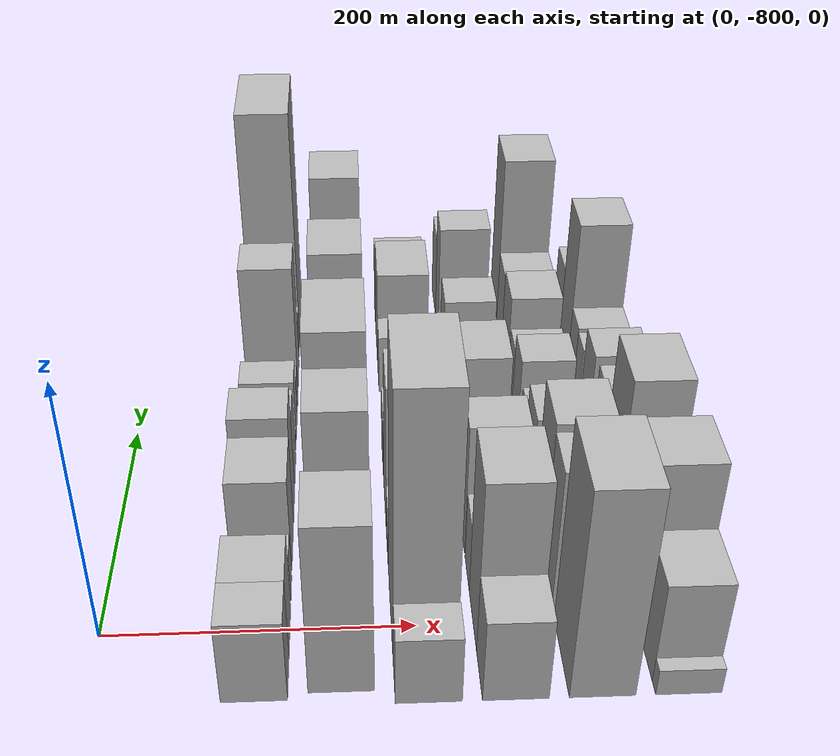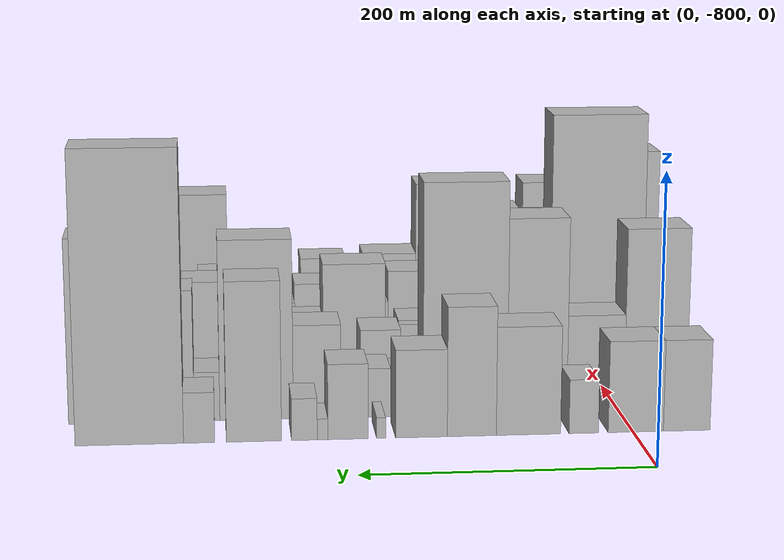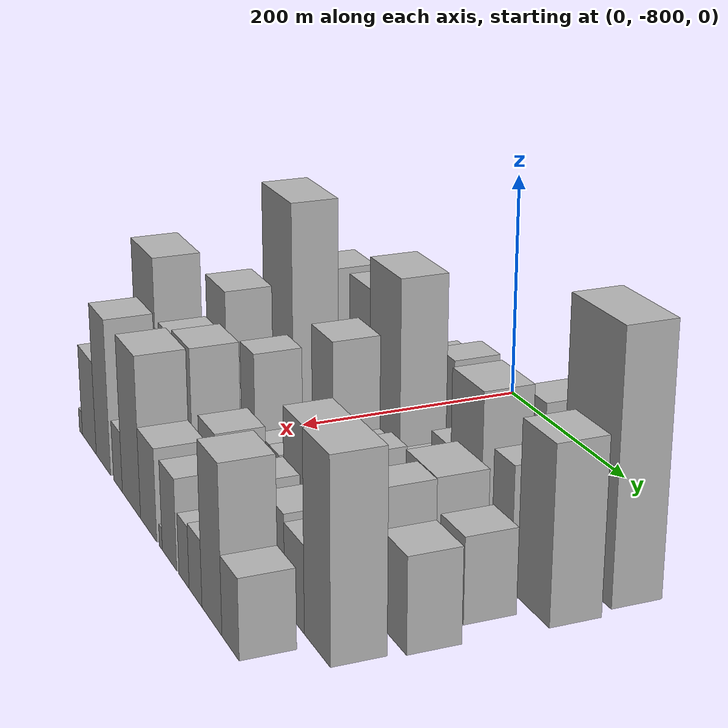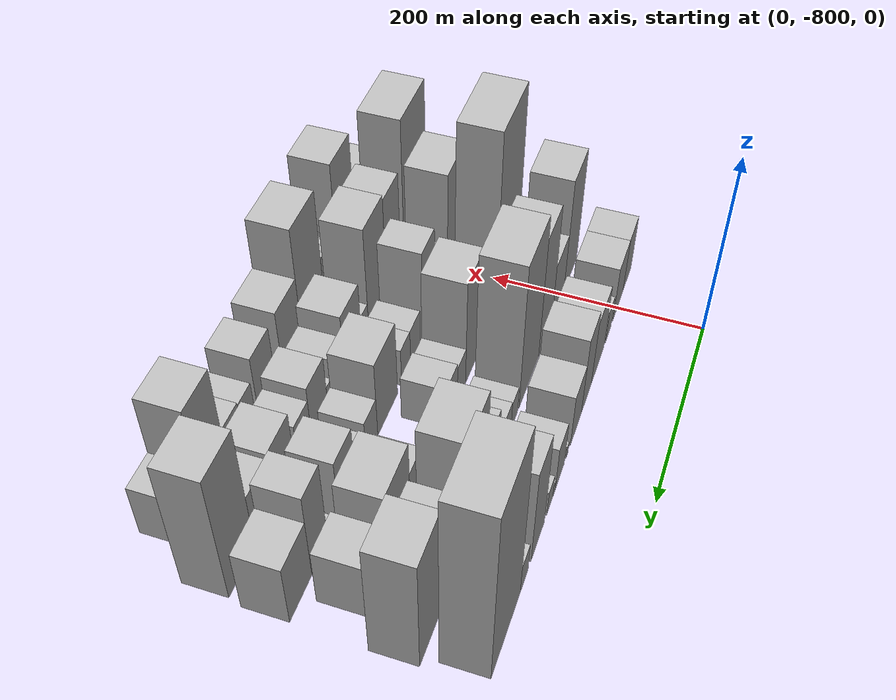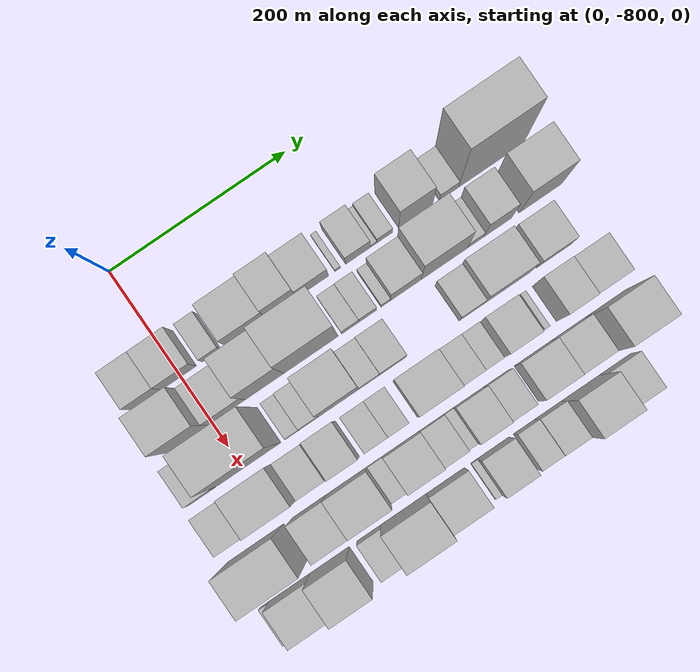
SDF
<sdf version="1.6">
 <world name="default">
  <model name="building_1">
   <static>1</static>
   <pose>100.0000 -838.2706 0 0.000000 0.000000 0.000000</pose>
   <link name="link">
    <pose>0 0 33.00 0 0 0</pose>
    <collision name="collision"><geometry><box><size>40.0000 33.4589 66.0000</size></box></geometry></collision>
    <visual name="visual">
     <cast_shadows>0</cast_shadows>
     <geometry><box><size>40.0000 33.4589 66.0000</size></box></geometry>
     <material>
      <script>
       <uri>model://HANNAS_wall/materials/scripts</uri>
       <uri>model://HANNAS_wall/materials/textures</uri>
       <name>vrc/HANNAS_wall</name>
      </script>
     </material>
    </visual>
   </link>
  </model>
  <model name="building_2">
   <static>1</static>
   <pose>100.0000 -801.8729 0 0.000000 0.000000 0.000000</pose>
   <link name="link">
    <pose>0 0 33.00 0 0 0</pose>
    <collision name="collision"><geometry><box><size>40.0000 39.3364 66.0000</size></box></geometry></collision>
    <visual name="visual">
     <cast_shadows>0</cast_shadows>
     <geometry><box><size>40.0000 39.3364 66.0000</size></box></geometry>
     <material>
      <script>
       <uri>model://HANNAS_wall/materials/scripts</uri>
       <uri>model://HANNAS_wall/materials/textures</uri>
       <name>vrc/HANNAS_wall</name>
      </script>
     </material>
    </visual>
   </link>
  </model>
  <model name="building_3">
   <static>1</static>
   <pose>100.0000 -764.7905 0 0.000000 0.000000 0.000000</pose>
   <link name="link">
    <pose>0 0 19.50 0 0 0</pose>
    <collision name="collision"><geometry><box><size>40.0000 20.8283 39.0000</size></box></geometry></collision>
    <visual name="visual">
     <cast_shadows>0</cast_shadows>
     <geometry><box><size>40.0000 20.8283 39.0000</size></box></geometry>
     <material>
      <script>
       <uri>model://HANNAS_wall/materials/scripts</uri>
       <uri>model://HANNAS_wall/materials/textures</uri>
       <name>vrc/HANNAS_wall</name>
      </script>
     </material>
    </visual>
   </link>
  </model>
  <model name="building_4">
   <static>1</static>
   <pose>100.0000 -725.6079 0 0.000000 0.000000 0.000000</pose>
   <link name="link">
    <pose>0 0 39.00 0 0 0</pose>
    <collision name="collision"><geometry><box><size>40.0000 45.5370 78.0000</size></box></geometry></collision>
    <visual name="visual">
     <cast_shadows>0</cast_shadows>
     <geometry><box><size>40.0000 45.5370 78.0000</size></box></geometry>
     <material>
      <script>
       <uri>model://HANNAS_wall/materials/scripts</uri>
       <uri>model://HANNAS_wall/materials/textures</uri>
       <name>vrc/HANNAS_wall</name>
      </script>
     </material>
    </visual>
   </link>
  </model>
  <model name="building_5">
   <static>1</static>
   <pose>100.0000 -685.6051 0 0.000000 0.000000 0.000000</pose>
   <link name="link">
    <pose>0 0 46.50 0 0 0</pose>
    <collision name="collision"><geometry><box><size>40.0000 34.4686 93.0000</size></box></geometry></collision>
    <visual name="visual">
     <cast_shadows>0</cast_shadows>
     <geometry><box><size>40.0000 34.4686 93.0000</size></box></geometry>
     <material>
      <script>
       <uri>model://HANNAS_wall/materials/scripts</uri>
       <uri>model://HANNAS_wall/materials/textures</uri>
       <name>vrc/HANNAS_wall</name>
      </script>
     </material>
    </visual>
   </link>
  </model>
  <model name="building_6">
   <static>1</static>
   <pose>100.0000 -650.2507 0 0.000000 0.000000 0.000000</pose>
   <link name="link">
    <pose>0 0 31.50 0 0 0</pose>
    <collision name="collision"><geometry><box><size>40.0000 36.2403 63.0000</size></box></geometry></collision>
    <visual name="visual">
     <cast_shadows>0</cast_shadows>
     <geometry><box><size>40.0000 36.2403 63.0000</size></box></geometry>
     <material>
      <script>
       <uri>model://HANNAS_wall/materials/scripts</uri>
       <uri>model://HANNAS_wall/materials/textures</uri>
       <name>vrc/HANNAS_wall</name>
      </script>
     </material>
    </visual>
   </link>
  </model>
  <model name="building_7">
   <static>1</static>
   <pose>100.0000 -621.9968 0 0.000000 0.000000 0.000000</pose>
   <link name="link">
    <pose>0 0 7.50 0 0 0</pose>
    <collision name="collision"><geometry><box><size>40.0000 6.2674 15.0000</size></box></geometry></collision>
    <visual name="visual">
     <cast_shadows>0</cast_shadows>
     <geometry><box><size>40.0000 6.2674 15.0000</size></box></geometry>
     <material>
      <script>
       <uri>model://HANNAS_wall/materials/scripts</uri>
       <uri>model://HANNAS_wall/materials/textures</uri>
       <name>vrc/HANNAS_wall</name>
      </script>
     </material>
    </visual>
   </link>
  </model>
  <model name="building_8">
   <static>1</static>
   <pose>100.0000 -598.8530 0 0.000000 0.000000 0.000000</pose>
   <link name="link">
    <pose>0 0 27.00 0 0 0</pose>
    <collision name="collision"><geometry><box><size>40.0000 28.0203 54.0000</size></box></geometry></collision>
    <visual name="visual">
     <cast_shadows>0</cast_shadows>
     <geometry><box><size>40.0000 28.0203 54.0000</size></box></geometry>
     <material>
      <script>
       <uri>model://HANNAS_wall/materials/scripts</uri>
       <uri>model://HANNAS_wall/materials/textures</uri>
       <name>vrc/HANNAS_wall</name>
      </script>
     </material>
    </visual>
   </link>
  </model>
  <model name="building_9">
   <static>1</static>
   <pose>100.0000 -581.1232 0 0.000000 0.000000 0.000000</pose>
   <link name="link">
    <pose>0 0 7.50 0 0 0</pose>
    <collision name="collision"><geometry><box><size>40.0000 7.4392 15.0000</size></box></geometry></collision>
    <visual name="visual">
     <cast_shadows>0</cast_shadows>
     <geometry><box><size>40.0000 7.4392 15.0000</size></box></geometry>
     <material>
      <script>
       <uri>model://HANNAS_wall/materials/scripts</uri>
       <uri>model://HANNAS_wall/materials/textures</uri>
       <name>vrc/HANNAS_wall</name>
      </script>
     </material>
    </visual>
   </link>
  </model>
  <model name="building_10">
   <static>1</static>
   <pose>100.0000 -568.5045 0 0.000000 0.000000 0.000000</pose>
   <link name="link">
    <pose>0 0 15.00 0 0 0</pose>
    <collision name="collision"><geometry><box><size>40.0000 17.7981 30.0000</size></box></geometry></collision>
    <visual name="visual">
     <cast_shadows>0</cast_shadows>
     <geometry><box><size>40.0000 17.7981 30.0000</size></box></geometry>
     <material>
      <script>
       <uri>model://HANNAS_wall/materials/scripts</uri>
       <uri>model://HANNAS_wall/materials/textures</uri>
       <name>vrc/HANNAS_wall</name>
      </script>
     </material>
    </visual>
   </link>
  </model>
  <model name="building_11">
   <static>1</static>
   <pose>100.0000 -533.4945 0 0.000000 0.000000 0.000000</pose>
   <link name="link">
    <pose>0 0 57.00 0 0 0</pose>
    <collision name="collision"><geometry><box><size>40.0000 38.2220 114.0000</size></box></geometry></collision>
    <visual name="visual">
     <cast_shadows>0</cast_shadows>
     <geometry><box><size>40.0000 38.2220 114.0000</size></box></geometry>
     <material>
      <script>
       <uri>model://HANNAS_wall/materials/scripts</uri>
       <uri>model://HANNAS_wall/materials/textures</uri>
       <name>vrc/HANNAS_wall</name>
      </script>
     </material>
    </visual>
   </link>
  </model>
  <model name="building_12">
   <static>1</static>
   <pose>100.0000 -495.6311 0 0.000000 0.000000 0.000000</pose>
   <link name="link">
    <pose>0 0 18.00 0 0 0</pose>
    <collision name="collision"><geometry><box><size>40.0000 21.5048 36.0000</size></box></geometry></collision>
    <visual name="visual">
     <cast_shadows>0</cast_shadows>
     <geometry><box><size>40.0000 21.5048 36.0000</size></box></geometry>
     <material>
      <script>
       <uri>model://HANNAS_wall/materials/scripts</uri>
       <uri>model://HANNAS_wall/materials/textures</uri>
       <name>vrc/HANNAS_wall</name>
      </script>
     </material>
    </visual>
   </link>
  </model>
  <model name="building_13">
   <static>1</static>
   <pose>100.0000 -447.6939 0 0.000000 0.000000 0.000000</pose>
   <link name="link">
    <pose>0 0 103.50 0 0 0</pose>
    <collision name="collision"><geometry><box><size>40.0000 74.3696 207.0000</size></box></geometry></collision>
    <visual name="visual">
     <cast_shadows>0</cast_shadows>
     <geometry><box><size>40.0000 74.3696 207.0000</size></box></geometry>
     <material>
      <script>
       <uri>model://HANNAS_wall/materials/scripts</uri>
       <uri>model://HANNAS_wall/materials/textures</uri>
       <name>vrc/HANNAS_wall</name>
      </script>
     </material>
    </visual>
   </link>
  </model>
  <model name="building_51">
   <static>1</static>
   <pose>152.0000 -826.8438 0 0.000000 0.000000 0.000000</pose>
   <link name="link">
    <pose>0 0 67.50 0 0 0</pose>
    <collision name="collision"><geometry><box><size>40.0000 46.3125 135.0000</size></box></geometry></collision>
    <visual name="visual">
     <cast_shadows>0</cast_shadows>
     <geometry><box><size>40.0000 46.3125 135.0000</size></box></geometry>
     <material>
      <script>
       <uri>model://HANNAS_wall/materials/scripts</uri>
       <uri>model://HANNAS_wall/materials/textures</uri>
       <name>vrc/HANNAS_wall</name>
      </script>
     </material>
    </visual>
   </link>
  </model>
  <model name="building_52">
   <static>1</static>
   <pose>152.0000 -782.7154 0 0.000000 0.000000 0.000000</pose>
   <link name="link">
    <pose>0 0 36.00 0 0 0</pose>
    <collision name="collision"><geometry><box><size>40.0000 41.9442 72.0000</size></box></geometry></collision>
    <visual name="visual">
     <cast_shadows>0</cast_shadows>
     <geometry><box><size>40.0000 41.9442 72.0000</size></box></geometry>
     <material>
      <script>
       <uri>model://HANNAS_wall/materials/scripts</uri>
       <uri>model://HANNAS_wall/materials/textures</uri>
       <name>vrc/HANNAS_wall</name>
      </script>
     </material>
    </visual>
   </link>
  </model>
  <model name="building_53">
   <static>1</static>
   <pose>152.0000 -739.8804 0 0.000000 0.000000 0.000000</pose>
   <link name="link">
    <pose>0 0 72.00 0 0 0</pose>
    <collision name="collision"><geometry><box><size>40.0000 43.7260 144.0000</size></box></geometry></collision>
    <visual name="visual">
     <cast_shadows>0</cast_shadows>
     <geometry><box><size>40.0000 43.7260 144.0000</size></box></geometry>
     <material>
      <script>
       <uri>model://HANNAS_wall/materials/scripts</uri>
       <uri>model://HANNAS_wall/materials/textures</uri>
       <name>vrc/HANNAS_wall</name>
      </script>
     </material>
    </visual>
   </link>
  </model>
  <model name="building_54">
   <static>1</static>
   <pose>152.0000 -687.4164 0 0.000000 0.000000 0.000000</pose>
   <link name="link">
    <pose>0 0 85.50 0 0 0</pose>
    <collision name="collision"><geometry><box><size>40.0000 61.2020 171.0000</size></box></geometry></collision>
    <visual name="visual">
     <cast_shadows>0</cast_shadows>
     <geometry><box><size>40.0000 61.2020 171.0000</size></box></geometry>
     <material>
      <script>
       <uri>model://HANNAS_wall/materials/scripts</uri>
       <uri>model://HANNAS_wall/materials/textures</uri>
       <name>vrc/HANNAS_wall</name>
      </script>
     </material>
    </visual>
   </link>
  </model>
  <model name="building_55">
   <static>1</static>
   <pose>152.0000 -643.0392 0 0.000000 0.000000 0.000000</pose>
   <link name="link">
    <pose>0 0 16.50 0 0 0</pose>
    <collision name="collision"><geometry><box><size>40.0000 19.5524 33.0000</size></box></geometry></collision>
    <visual name="visual">
     <cast_shadows>0</cast_shadows>
     <geometry><box><size>40.0000 19.5524 33.0000</size></box></geometry>
     <material>
      <script>
       <uri>model://HANNAS_wall/materials/scripts</uri>
       <uri>model://HANNAS_wall/materials/textures</uri>
       <name>vrc/HANNAS_wall</name>
      </script>
     </material>
    </visual>
   </link>
  </model>
  <model name="building_56">
   <static>1</static>
   <pose>152.0000 -623.2239 0 0.000000 0.000000 0.000000</pose>
   <link name="link">
    <pose>0 0 18.00 0 0 0</pose>
    <collision name="collision"><geometry><box><size>40.0000 20.0781 36.0000</size></box></geometry></collision>
    <visual name="visual">
     <cast_shadows>0</cast_shadows>
     <geometry><box><size>40.0000 20.0781 36.0000</size></box></geometry>
     <material>
      <script>
       <uri>model://HANNAS_wall/materials/scripts</uri>
       <uri>model://HANNAS_wall/materials/textures</uri>
       <name>vrc/HANNAS_wall</name>
      </script>
     </material>
    </visual>
   </link>
  </model>
  <model name="building_57">
   <static>1</static>
   <pose>152.0000 -602.8042 0 0.000000 0.000000 0.000000</pose>
   <link name="link">
    <pose>0 0 12.00 0 0 0</pose>
    <collision name="collision"><geometry><box><size>40.0000 10.7614 24.0000</size></box></geometry></collision>
    <visual name="visual">
     <cast_shadows>0</cast_shadows>
     <geometry><box><size>40.0000 10.7614 24.0000</size></box></geometry>
     <material>
      <script>
       <uri>model://HANNAS_wall/materials/scripts</uri>
       <uri>model://HANNAS_wall/materials/textures</uri>
       <name>vrc/HANNAS_wall</name>
      </script>
     </material>
    </visual>
   </link>
  </model>
  <model name="building_58">
   <static>1</static>
   <pose>152.0000 -580.1652 0 0.000000 0.000000 0.000000</pose>
   <link name="link">
    <pose>0 0 34.50 0 0 0</pose>
    <collision name="collision"><geometry><box><size>40.0000 34.5166 69.0000</size></box></geometry></collision>
    <visual name="visual">
     <cast_shadows>0</cast_shadows>
     <geometry><box><size>40.0000 34.5166 69.0000</size></box></geometry>
     <material>
      <script>
       <uri>model://HANNAS_wall/materials/scripts</uri>
       <uri>model://HANNAS_wall/materials/textures</uri>
       <name>vrc/HANNAS_wall</name>
      </script>
     </material>
    </visual>
   </link>
  </model>
  <model name="building_59">
   <static>1</static>
   <pose>152.0000 -536.6272 0 0.000000 0.000000 0.000000</pose>
   <link name="link">
    <pose>0 0 66.00 0 0 0</pose>
    <collision name="collision"><geometry><box><size>40.0000 52.5594 132.0000</size></box></geometry></collision>
    <visual name="visual">
     <cast_shadows>0</cast_shadows>
     <geometry><box><size>40.0000 52.5594 132.0000</size></box></geometry>
     <material>
      <script>
       <uri>model://HANNAS_wall/materials/scripts</uri>
       <uri>model://HANNAS_wall/materials/textures</uri>
       <name>vrc/HANNAS_wall</name>
      </script>
     </material>
    </visual>
   </link>
  </model>
  <model name="building_60">
   <static>1</static>
   <pose>152.0000 -501.2049 0 0.000000 0.000000 0.000000</pose>
   <link name="link">
    <pose>0 0 18.00 0 0 0</pose>
    <collision name="collision"><geometry><box><size>40.0000 18.2852 36.0000</size></box></geometry></collision>
    <visual name="visual">
     <cast_shadows>0</cast_shadows>
     <geometry><box><size>40.0000 18.2852 36.0000</size></box></geometry>
     <material>
      <script>
       <uri>model://HANNAS_wall/materials/scripts</uri>
       <uri>model://HANNAS_wall/materials/textures</uri>
       <name>vrc/HANNAS_wall</name>
      </script>
     </material>
    </visual>
   </link>
  </model>
  <model name="building_61">
   <static>1</static>
   <pose>152.0000 -476.0981 0 0.000000 0.000000 0.000000</pose>
   <link name="link">
    <pose>0 0 48.00 0 0 0</pose>
    <collision name="collision"><geometry><box><size>40.0000 31.9284 96.0000</size></box></geometry></collision>
    <visual name="visual">
     <cast_shadows>0</cast_shadows>
     <geometry><box><size>40.0000 31.9284 96.0000</size></box></geometry>
     <material>
      <script>
       <uri>model://HANNAS_wall/materials/scripts</uri>
       <uri>model://HANNAS_wall/materials/textures</uri>
       <name>vrc/HANNAS_wall</name>
      </script>
     </material>
    </visual>
   </link>
  </model>
  <model name="building_62">
   <static>1</static>
   <pose>152.0000 -426.9603 0 0.000000 0.000000 0.000000</pose>
   <link name="link">
    <pose>0 0 67.50 0 0 0</pose>
    <collision name="collision"><geometry><box><size>40.0000 48.3472 135.0000</size></box></geometry></collision>
    <visual name="visual">
     <cast_shadows>0</cast_shadows>
     <geometry><box><size>40.0000 48.3472 135.0000</size></box></geometry>
     <material>
      <script>
       <uri>model://HANNAS_wall/materials/scripts</uri>
       <uri>model://HANNAS_wall/materials/textures</uri>
       <name>vrc/HANNAS_wall</name>
      </script>
     </material>
    </visual>
   </link>
  </model>
  <model name="building_97">
   <static>1</static>
   <pose>204.0000 -845.5998 0 0.000000 0.000000 0.000000</pose>
   <link name="link">
    <pose>0 0 27.00 0 0 0</pose>
    <collision name="collision"><geometry><box><size>40.0000 28.8004 54.0000</size></box></geometry></collision>
    <visual name="visual">
     <cast_shadows>0</cast_shadows>
     <geometry><box><size>40.0000 28.8004 54.0000</size></box></geometry>
     <material>
      <script>
       <uri>model://HANNAS_wall/materials/scripts</uri>
       <uri>model://HANNAS_wall/materials/textures</uri>
       <name>vrc/HANNAS_wall</name>
      </script>
     </material>
    </visual>
   </link>
  </model>
  <model name="building_98">
   <static>1</static>
   <pose>204.0000 -792.1993 0 0.000000 0.000000 0.000000</pose>
   <link name="link">
    <pose>0 0 105.00 0 0 0</pose>
    <collision name="collision"><geometry><box><size>40.0000 70.0006 210.0000</size></box></geometry></collision>
    <visual name="visual">
     <cast_shadows>0</cast_shadows>
     <geometry><box><size>40.0000 70.0006 210.0000</size></box></geometry>
     <material>
      <script>
       <uri>model://HANNAS_wall/materials/scripts</uri>
       <uri>model://HANNAS_wall/materials/textures</uri>
       <name>vrc/HANNAS_wall</name>
      </script>
     </material>
    </visual>
   </link>
  </model>
  <model name="building_99">
   <static>1</static>
   <pose>204.0000 -743.4783 0 0.000000 0.000000 0.000000</pose>
   <link name="link">
    <pose>0 0 15.00 0 0 0</pose>
    <collision name="collision"><geometry><box><size>40.0000 15.4414 30.0000</size></box></geometry></collision>
    <visual name="visual">
     <cast_shadows>0</cast_shadows>
     <geometry><box><size>40.0000 15.4414 30.0000</size></box></geometry>
     <material>
      <script>
       <uri>model://HANNAS_wall/materials/scripts</uri>
       <uri>model://HANNAS_wall/materials/textures</uri>
       <name>vrc/HANNAS_wall</name>
      </script>
     </material>
    </visual>
   </link>
  </model>
  <model name="building_100">
   <static>1</static>
   <pose>204.0000 -724.7944 0 0.000000 0.000000 0.000000</pose>
   <link name="link">
    <pose>0 0 21.00 0 0 0</pose>
    <collision name="collision"><geometry><box><size>40.0000 21.9263 42.0000</size></box></geometry></collision>
    <visual name="visual">
     <cast_shadows>0</cast_shadows>
     <geometry><box><size>40.0000 21.9263 42.0000</size></box></geometry>
     <material>
      <script>
       <uri>model://HANNAS_wall/materials/scripts</uri>
       <uri>model://HANNAS_wall/materials/textures</uri>
       <name>vrc/HANNAS_wall</name>
      </script>
     </material>
    </visual>
   </link>
  </model>
  <model name="building_101">
   <static>1</static>
   <pose>204.0000 -691.2227 0 0.000000 0.000000 0.000000</pose>
   <link name="link">
    <pose>0 0 61.50 0 0 0</pose>
    <collision name="collision"><geometry><box><size>40.0000 45.2170 123.0000</size></box></geometry></collision>
    <visual name="visual">
     <cast_shadows>0</cast_shadows>
     <geometry><box><size>40.0000 45.2170 123.0000</size></box></geometry>
     <material>
      <script>
       <uri>model://HANNAS_wall/materials/scripts</uri>
       <uri>model://HANNAS_wall/materials/textures</uri>
       <name>vrc/HANNAS_wall</name>
      </script>
     </material>
    </visual>
   </link>
  </model>
  <model name="building_102">
   <static>1</static>
   <pose>204.0000 -657.0291 0 0.000000 0.000000 0.000000</pose>
   <link name="link">
    <pose>0 0 22.50 0 0 0</pose>
    <collision name="collision"><geometry><box><size>40.0000 23.1703 45.0000</size></box></geometry></collision>
    <visual name="visual">
     <cast_shadows>0</cast_shadows>
     <geometry><box><size>40.0000 23.1703 45.0000</size></box></geometry>
     <material>
      <script>
       <uri>model://HANNAS_wall/materials/scripts</uri>
       <uri>model://HANNAS_wall/materials/textures</uri>
       <name>vrc/HANNAS_wall</name>
      </script>
     </material>
    </visual>
   </link>
  </model>
  <model name="building_103">
   <static>1</static>
   <pose>204.0000 -630.3639 0 0.000000 0.000000 0.000000</pose>
   <link name="link">
    <pose>0 0 25.50 0 0 0</pose>
    <collision name="collision"><geometry><box><size>40.0000 30.1602 51.0000</size></box></geometry></collision>
    <visual name="visual">
     <cast_shadows>0</cast_shadows>
     <geometry><box><size>40.0000 30.1602 51.0000</size></box></geometry>
     <material>
      <script>
       <uri>model://HANNAS_wall/materials/scripts</uri>
       <uri>model://HANNAS_wall/materials/textures</uri>
       <name>vrc/HANNAS_wall</name>
      </script>
     </material>
    </visual>
   </link>
  </model>
  <model name="building_104">
   <static>1</static>
   <pose>204.0000 -541.0354 0 0.000000 0.000000 0.000000</pose>
   <link name="link">
    <pose>0 0 25.50 0 0 0</pose>
    <collision name="collision"><geometry><box><size>40.0000 28.1655 51.0000</size></box></geometry></collision>
    <visual name="visual">
     <cast_shadows>0</cast_shadows>
     <geometry><box><size>40.0000 28.1655 51.0000</size></box></geometry>
     <material>
      <script>
       <uri>model://HANNAS_wall/materials/scripts</uri>
       <uri>model://HANNAS_wall/materials/textures</uri>
       <name>vrc/HANNAS_wall</name>
      </script>
     </material>
    </visual>
   </link>
  </model>
  <model name="building_105">
   <static>1</static>
   <pose>204.0000 -500.5286 0 0.000000 0.000000 0.000000</pose>
   <link name="link">
    <pose>0 0 45.00 0 0 0</pose>
    <collision name="collision"><geometry><box><size>40.0000 52.8481 90.0000</size></box></geometry></collision>
    <visual name="visual">
     <cast_shadows>0</cast_shadows>
     <geometry><box><size>40.0000 52.8481 90.0000</size></box></geometry>
     <material>
      <script>
       <uri>model://HANNAS_wall/materials/scripts</uri>
       <uri>model://HANNAS_wall/materials/textures</uri>
       <name>vrc/HANNAS_wall</name>
      </script>
     </material>
    </visual>
   </link>
  </model>
  <model name="building_106">
   <static>1</static>
   <pose>204.0000 -447.7052 0 0.000000 0.000000 0.000000</pose>
   <link name="link">
    <pose>0 0 33.00 0 0 0</pose>
    <collision name="collision"><geometry><box><size>40.0000 38.7988 66.0000</size></box></geometry></collision>
    <visual name="visual">
     <cast_shadows>0</cast_shadows>
     <geometry><box><size>40.0000 38.7988 66.0000</size></box></geometry>
     <material>
      <script>
       <uri>model://HANNAS_wall/materials/scripts</uri>
       <uri>model://HANNAS_wall/materials/textures</uri>
       <name>vrc/HANNAS_wall</name>
      </script>
     </material>
    </visual>
   </link>
  </model>
  <model name="building_145">
   <static>1</static>
   <pose>256.0000 -841.3039 0 0.000000 0.000000 0.000000</pose>
   <link name="link">
    <pose>0 0 33.00 0 0 0</pose>
    <collision name="collision"><geometry><box><size>40.0000 37.3922 66.0000</size></box></geometry></collision>
    <visual name="visual">
     <cast_shadows>0</cast_shadows>
     <geometry><box><size>40.0000 37.3922 66.0000</size></box></geometry>
     <material>
      <script>
       <uri>model://HANNAS_wall/materials/scripts</uri>
       <uri>model://HANNAS_wall/materials/textures</uri>
       <name>vrc/HANNAS_wall</name>
      </script>
     </material>
    </visual>
   </link>
  </model>
  <model name="building_146">
   <static>1</static>
   <pose>256.0000 -797.4799 0 0.000000 0.000000 0.000000</pose>
   <link name="link">
    <pose>0 0 69.00 0 0 0</pose>
    <collision name="collision"><geometry><box><size>40.0000 50.2558 138.0000</size></box></geometry></collision>
    <visual name="visual">
     <cast_shadows>0</cast_shadows>
     <geometry><box><size>40.0000 50.2558 138.0000</size></box></geometry>
     <material>
      <script>
       <uri>model://HANNAS_wall/materials/scripts</uri>
       <uri>model://HANNAS_wall/materials/textures</uri>
       <name>vrc/HANNAS_wall</name>
      </script>
     </material>
    </visual>
   </link>
  </model>
  <model name="building_147">
   <static>1</static>
   <pose>256.0000 -756.6283 0 0.000000 0.000000 0.000000</pose>
   <link name="link">
    <pose>0 0 28.50 0 0 0</pose>
    <collision name="collision"><geometry><box><size>40.0000 31.4475 57.0000</size></box></geometry></collision>
    <visual name="visual">
     <cast_shadows>0</cast_shadows>
     <geometry><box><size>40.0000 31.4475 57.0000</size></box></geometry>
     <material>
      <script>
       <uri>model://HANNAS_wall/materials/scripts</uri>
       <uri>model://HANNAS_wall/materials/textures</uri>
       <name>vrc/HANNAS_wall</name>
      </script>
     </material>
    </visual>
   </link>
  </model>
  <model name="building_148">
   <static>1</static>
   <pose>256.0000 -720.3949 0 0.000000 0.000000 0.000000</pose>
   <link name="link">
    <pose>0 0 54.00 0 0 0</pose>
    <collision name="collision"><geometry><box><size>40.0000 33.0193 108.0000</size></box></geometry></collision>
    <visual name="visual">
     <cast_shadows>0</cast_shadows>
     <geometry><box><size>40.0000 33.0193 108.0000</size></box></geometry>
     <material>
      <script>
       <uri>model://HANNAS_wall/materials/scripts</uri>
       <uri>model://HANNAS_wall/materials/textures</uri>
       <name>vrc/HANNAS_wall</name>
      </script>
     </material>
    </visual>
   </link>
  </model>
  <model name="building_149">
   <static>1</static>
   <pose>256.0000 -684.8244 0 0.000000 0.000000 0.000000</pose>
   <link name="link">
    <pose>0 0 22.50 0 0 0</pose>
    <collision name="collision"><geometry><box><size>40.0000 26.1219 45.0000</size></box></geometry></collision>
    <visual name="visual">
     <cast_shadows>0</cast_shadows>
     <geometry><box><size>40.0000 26.1219 45.0000</size></box></geometry>
     <material>
      <script>
       <uri>model://HANNAS_wall/materials/scripts</uri>
       <uri>model://HANNAS_wall/materials/textures</uri>
       <name>vrc/HANNAS_wall</name>
      </script>
     </material>
    </visual>
   </link>
  </model>
  <model name="building_150">
   <static>1</static>
   <pose>256.0000 -660.0914 0 0.000000 0.000000 0.000000</pose>
   <link name="link">
    <pose>0 0 22.50 0 0 0</pose>
    <collision name="collision"><geometry><box><size>40.0000 23.3440 45.0000</size></box></geometry></collision>
    <visual name="visual">
     <cast_shadows>0</cast_shadows>
     <geometry><box><size>40.0000 23.3440 45.0000</size></box></geometry>
     <material>
      <script>
       <uri>model://HANNAS_wall/materials/scripts</uri>
       <uri>model://HANNAS_wall/materials/textures</uri>
       <name>vrc/HANNAS_wall</name>
      </script>
     </material>
    </visual>
   </link>
  </model>
  <model name="building_151">
   <static>1</static>
   <pose>256.0000 -614.3917 0 0.000000 0.000000 0.000000</pose>
   <link name="link">
    <pose>0 0 45.00 0 0 0</pose>
    <collision name="collision"><geometry><box><size>40.0000 48.0555 90.0000</size></box></geometry></collision>
    <visual name="visual">
     <cast_shadows>0</cast_shadows>
     <geometry><box><size>40.0000 48.0555 90.0000</size></box></geometry>
     <material>
      <script>
       <uri>model://HANNAS_wall/materials/scripts</uri>
       <uri>model://HANNAS_wall/materials/textures</uri>
       <name>vrc/HANNAS_wall</name>
      </script>
     </material>
    </visual>
   </link>
  </model>
  <model name="building_152">
   <static>1</static>
   <pose>256.0000 -576.9121 0 0.000000 0.000000 0.000000</pose>
   <link name="link">
    <pose>0 0 24.00 0 0 0</pose>
    <collision name="collision"><geometry><box><size>40.0000 26.9036 48.0000</size></box></geometry></collision>
    <visual name="visual">
     <cast_shadows>0</cast_shadows>
     <geometry><box><size>40.0000 26.9036 48.0000</size></box></geometry>
     <material>
      <script>
       <uri>model://HANNAS_wall/materials/scripts</uri>
       <uri>model://HANNAS_wall/materials/textures</uri>
       <name>vrc/HANNAS_wall</name>
      </script>
     </material>
    </visual>
   </link>
  </model>
  <model name="building_153">
   <static>1</static>
   <pose>256.0000 -552.8810 0 0.000000 0.000000 0.000000</pose>
   <link name="link">
    <pose>0 0 18.00 0 0 0</pose>
    <collision name="collision"><geometry><box><size>40.0000 21.1588 36.0000</size></box></geometry></collision>
    <visual name="visual">
     <cast_shadows>0</cast_shadows>
     <geometry><box><size>40.0000 21.1588 36.0000</size></box></geometry>
     <material>
      <script>
       <uri>model://HANNAS_wall/materials/scripts</uri>
       <uri>model://HANNAS_wall/materials/textures</uri>
       <name>vrc/HANNAS_wall</name>
      </script>
     </material>
    </visual>
   </link>
  </model>
  <model name="building_154">
   <static>1</static>
   <pose>256.0000 -521.2130 0 0.000000 0.000000 0.000000</pose>
   <link name="link">
    <pose>0 0 36.00 0 0 0</pose>
    <collision name="collision"><geometry><box><size>40.0000 36.1773 72.0000</size></box></geometry></collision>
    <visual name="visual">
     <cast_shadows>0</cast_shadows>
     <geometry><box><size>40.0000 36.1773 72.0000</size></box></geometry>
     <material>
      <script>
       <uri>model://HANNAS_wall/materials/scripts</uri>
       <uri>model://HANNAS_wall/materials/textures</uri>
       <name>vrc/HANNAS_wall</name>
      </script>
     </material>
    </visual>
   </link>
  </model>
  <model name="building_155">
   <static>1</static>
   <pose>256.0000 -492.0850 0 0.000000 0.000000 0.000000</pose>
   <link name="link">
    <pose>0 0 7.50 0 0 0</pose>
    <collision name="collision"><geometry><box><size>40.0000 6.0787 15.0000</size></box></geometry></collision>
    <visual name="visual">
     <cast_shadows>0</cast_shadows>
     <geometry><box><size>40.0000 6.0787 15.0000</size></box></geometry>
     <material>
      <script>
       <uri>model://HANNAS_wall/materials/scripts</uri>
       <uri>model://HANNAS_wall/materials/textures</uri>
       <name>vrc/HANNAS_wall</name>
      </script>
     </material>
    </visual>
   </link>
  </model>
  <model name="building_156">
   <static>1</static>
   <pose>256.0000 -464.0402 0 0.000000 0.000000 0.000000</pose>
   <link name="link">
    <pose>0 0 51.00 0 0 0</pose>
    <collision name="collision"><geometry><box><size>40.0000 32.0108 102.0000</size></box></geometry></collision>
    <visual name="visual">
     <cast_shadows>0</cast_shadows>
     <geometry><box><size>40.0000 32.0108 102.0000</size></box></geometry>
     <material>
      <script>
       <uri>model://HANNAS_wall/materials/scripts</uri>
       <uri>model://HANNAS_wall/materials/textures</uri>
       <name>vrc/HANNAS_wall</name>
      </script>
     </material>
    </visual>
   </link>
  </model>
  <model name="building_157">
   <static>1</static>
   <pose>256.0000 -426.6441 0 0.000000 0.000000 0.000000</pose>
   <link name="link">
    <pose>0 0 36.00 0 0 0</pose>
    <collision name="collision"><geometry><box><size>40.0000 42.7813 72.0000</size></box></geometry></collision>
    <visual name="visual">
     <cast_shadows>0</cast_shadows>
     <geometry><box><size>40.0000 42.7813 72.0000</size></box></geometry>
     <material>
      <script>
       <uri>model://HANNAS_wall/materials/scripts</uri>
       <uri>model://HANNAS_wall/materials/textures</uri>
       <name>vrc/HANNAS_wall</name>
      </script>
     </material>
    </visual>
   </link>
  </model>
  <model name="building_196">
   <static>1</static>
   <pose>308.0000 -828.8700 0 0.000000 0.000000 0.000000</pose>
   <link name="link">
    <pose>0 0 82.50 0 0 0</pose>
    <collision name="collision"><geometry><box><size>40.0000 62.2599 165.0000</size></box></geometry></collision>
    <visual name="visual">
     <cast_shadows>0</cast_shadows>
     <geometry><box><size>40.0000 62.2599 165.0000</size></box></geometry>
     <material>
      <script>
       <uri>model://HANNAS_wall/materials/scripts</uri>
       <uri>model://HANNAS_wall/materials/textures</uri>
       <name>vrc/HANNAS_wall</name>
      </script>
     </material>
    </visual>
   </link>
  </model>
  <model name="building_197">
   <static>1</static>
   <pose>308.0000 -768.7288 0 0.000000 0.000000 0.000000</pose>
   <link name="link">
    <pose>0 0 57.00 0 0 0</pose>
    <collision name="collision"><geometry><box><size>40.0000 38.0225 114.0000</size></box></geometry></collision>
    <visual name="visual">
     <cast_shadows>0</cast_shadows>
     <geometry><box><size>40.0000 38.0225 114.0000</size></box></geometry>
     <material>
      <script>
       <uri>model://HANNAS_wall/materials/scripts</uri>
       <uri>model://HANNAS_wall/materials/textures</uri>
       <name>vrc/HANNAS_wall</name>
      </script>
     </material>
    </visual>
   </link>
  </model>
  <model name="building_198">
   <static>1</static>
   <pose>308.0000 -726.5670 0 0.000000 0.000000 0.000000</pose>
   <link name="link">
    <pose>0 0 60.00 0 0 0</pose>
    <collision name="collision"><geometry><box><size>40.0000 46.3011 120.0000</size></box></geometry></collision>
    <visual name="visual">
     <cast_shadows>0</cast_shadows>
     <geometry><box><size>40.0000 46.3011 120.0000</size></box></geometry>
     <material>
      <script>
       <uri>model://HANNAS_wall/materials/scripts</uri>
       <uri>model://HANNAS_wall/materials/textures</uri>
       <name>vrc/HANNAS_wall</name>
      </script>
     </material>
    </visual>
   </link>
  </model>
  <model name="building_199">
   <static>1</static>
   <pose>308.0000 -694.7154 0 0.000000 0.000000 0.000000</pose>
   <link name="link">
    <pose>0 0 15.00 0 0 0</pose>
    <collision name="collision"><geometry><box><size>40.0000 17.4020 30.0000</size></box></geometry></collision>
    <visual name="visual">
     <cast_shadows>0</cast_shadows>
     <geometry><box><size>40.0000 17.4020 30.0000</size></box></geometry>
     <material>
      <script>
       <uri>model://HANNAS_wall/materials/scripts</uri>
       <uri>model://HANNAS_wall/materials/textures</uri>
       <name>vrc/HANNAS_wall</name>
      </script>
     </material>
    </visual>
   </link>
  </model>
  <model name="building_200">
   <static>1</static>
   <pose>308.0000 -665.4667 0 0.000000 0.000000 0.000000</pose>
   <link name="link">
    <pose>0 0 36.00 0 0 0</pose>
    <collision name="collision"><geometry><box><size>40.0000 41.0956 72.0000</size></box></geometry></collision>
    <visual name="visual">
     <cast_shadows>0</cast_shadows>
     <geometry><box><size>40.0000 41.0956 72.0000</size></box></geometry>
     <material>
      <script>
       <uri>model://HANNAS_wall/materials/scripts</uri>
       <uri>model://HANNAS_wall/materials/textures</uri>
       <name>vrc/HANNAS_wall</name>
      </script>
     </material>
    </visual>
   </link>
  </model>
  <model name="building_201">
   <static>1</static>
   <pose>308.0000 -631.1732 0 0.000000 0.000000 0.000000</pose>
   <link name="link">
    <pose>0 0 24.00 0 0 0</pose>
    <collision name="collision"><geometry><box><size>40.0000 27.4913 48.0000</size></box></geometry></collision>
    <visual name="visual">
     <cast_shadows>0</cast_shadows>
     <geometry><box><size>40.0000 27.4913 48.0000</size></box></geometry>
     <material>
      <script>
       <uri>model://HANNAS_wall/materials/scripts</uri>
       <uri>model://HANNAS_wall/materials/textures</uri>
       <name>vrc/HANNAS_wall</name>
      </script>
     </material>
    </visual>
   </link>
  </model>
  <model name="building_202">
   <static>1</static>
   <pose>308.0000 -611.9041 0 0.000000 0.000000 0.000000</pose>
   <link name="link">
    <pose>0 0 12.00 0 0 0</pose>
    <collision name="collision"><geometry><box><size>40.0000 11.0469 24.0000</size></box></geometry></collision>
    <visual name="visual">
     <cast_shadows>0</cast_shadows>
     <geometry><box><size>40.0000 11.0469 24.0000</size></box></geometry>
     <material>
      <script>
       <uri>model://HANNAS_wall/materials/scripts</uri>
       <uri>model://HANNAS_wall/materials/textures</uri>
       <name>vrc/HANNAS_wall</name>
      </script>
     </material>
    </visual>
   </link>
  </model>
  <model name="building_203">
   <static>1</static>
   <pose>308.0000 -588.6320 0 0.000000 0.000000 0.000000</pose>
   <link name="link">
    <pose>0 0 31.50 0 0 0</pose>
    <collision name="collision"><geometry><box><size>40.0000 35.4973 63.0000</size></box></geometry></collision>
    <visual name="visual">
     <cast_shadows>0</cast_shadows>
     <geometry><box><size>40.0000 35.4973 63.0000</size></box></geometry>
     <material>
      <script>
       <uri>model://HANNAS_wall/materials/scripts</uri>
       <uri>model://HANNAS_wall/materials/textures</uri>
       <name>vrc/HANNAS_wall</name>
      </script>
     </material>
    </visual>
   </link>
  </model>
  <model name="building_204">
   <static>1</static>
   <pose>308.0000 -556.6472 0 0.000000 0.000000 0.000000</pose>
   <link name="link">
    <pose>0 0 24.00 0 0 0</pose>
    <collision name="collision"><geometry><box><size>40.0000 28.4723 48.0000</size></box></geometry></collision>
    <visual name="visual">
     <cast_shadows>0</cast_shadows>
     <geometry><box><size>40.0000 28.4723 48.0000</size></box></geometry>
     <material>
      <script>
       <uri>model://HANNAS_wall/materials/scripts</uri>
       <uri>model://HANNAS_wall/materials/textures</uri>
       <name>vrc/HANNAS_wall</name>
      </script>
     </material>
    </visual>
   </link>
  </model>
  <model name="building_205">
   <static>1</static>
   <pose>308.0000 -515.7743 0 0.000000 0.000000 0.000000</pose>
   <link name="link">
    <pose>0 0 36.00 0 0 0</pose>
    <collision name="collision"><geometry><box><size>40.0000 41.2733 72.0000</size></box></geometry></collision>
    <visual name="visual">
     <cast_shadows>0</cast_shadows>
     <geometry><box><size>40.0000 41.2733 72.0000</size></box></geometry>
     <material>
      <script>
       <uri>model://HANNAS_wall/materials/scripts</uri>
       <uri>model://HANNAS_wall/materials/textures</uri>
       <name>vrc/HANNAS_wall</name>
      </script>
     </material>
    </visual>
   </link>
  </model>
  <model name="building_206">
   <static>1</static>
   <pose>308.0000 -476.1664 0 0.000000 0.000000 0.000000</pose>
   <link name="link">
    <pose>0 0 33.00 0 0 0</pose>
    <collision name="collision"><geometry><box><size>40.0000 37.9426 66.0000</size></box></geometry></collision>
    <visual name="visual">
     <cast_shadows>0</cast_shadows>
     <geometry><box><size>40.0000 37.9426 66.0000</size></box></geometry>
     <material>
      <script>
       <uri>model://HANNAS_wall/materials/scripts</uri>
       <uri>model://HANNAS_wall/materials/textures</uri>
       <name>vrc/HANNAS_wall</name>
      </script>
     </material>
    </visual>
   </link>
  </model>
  <model name="building_207">
   <static>1</static>
   <pose>308.0000 -433.2798 0 0.000000 0.000000 0.000000</pose>
   <link name="link">
    <pose>0 0 75.00 0 0 0</pose>
    <collision name="collision"><geometry><box><size>40.0000 47.8307 150.0000</size></box></geometry></collision>
    <visual name="visual">
     <cast_shadows>0</cast_shadows>
     <geometry><box><size>40.0000 47.8307 150.0000</size></box></geometry>
     <material>
      <script>
       <uri>model://HANNAS_wall/materials/scripts</uri>
       <uri>model://HANNAS_wall/materials/textures</uri>
       <name>vrc/HANNAS_wall</name>
      </script>
     </material>
    </visual>
   </link>
  </model>
  <model name="building_247">
   <static>1</static>
   <pose>360.0000 -855.0214 0 0.000000 0.000000 0.000000</pose>
   <link name="link">
    <pose>0 0 10.50 0 0 0</pose>
    <collision name="collision"><geometry><box><size>40.0000 9.9573 21.0000</size></box></geometry></collision>
    <visual name="visual">
     <cast_shadows>0</cast_shadows>
     <geometry><box><size>40.0000 9.9573 21.0000</size></box></geometry>
     <material>
      <script>
       <uri>model://HANNAS_wall/materials/scripts</uri>
       <uri>model://HANNAS_wall/materials/textures</uri>
       <name>vrc/HANNAS_wall</name>
      </script>
     </material>
    </visual>
   </link>
  </model>
  <model name="building_248">
   <static>1</static>
   <pose>360.0000 -827.0814 0 0.000000 0.000000 0.000000</pose>
   <link name="link">
    <pose>0 0 40.50 0 0 0</pose>
    <collision name="collision"><geometry><box><size>40.0000 45.9227 81.0000</size></box></geometry></collision>
    <visual name="visual">
     <cast_shadows>0</cast_shadows>
     <geometry><box><size>40.0000 45.9227 81.0000</size></box></geometry>
     <material>
      <script>
       <uri>model://HANNAS_wall/materials/scripts</uri>
       <uri>model://HANNAS_wall/materials/textures</uri>
       <name>vrc/HANNAS_wall</name>
      </script>
     </material>
    </visual>
   </link>
  </model>
  <model name="building_249">
   <static>1</static>
   <pose>360.0000 -781.6936 0 0.000000 0.000000 0.000000</pose>
   <link name="link">
    <pose>0 0 66.00 0 0 0</pose>
    <collision name="collision"><geometry><box><size>40.0000 44.8528 132.0000</size></box></geometry></collision>
    <visual name="visual">
     <cast_shadows>0</cast_shadows>
     <geometry><box><size>40.0000 44.8528 132.0000</size></box></geometry>
     <material>
      <script>
       <uri>model://HANNAS_wall/materials/scripts</uri>
       <uri>model://HANNAS_wall/materials/textures</uri>
       <name>vrc/HANNAS_wall</name>
      </script>
     </material>
    </visual>
   </link>
  </model>
  <model name="building_250">
   <static>1</static>
   <pose>360.0000 -737.0689 0 0.000000 0.000000 0.000000</pose>
   <link name="link">
    <pose>0 0 25.50 0 0 0</pose>
    <collision name="collision"><geometry><box><size>40.0000 26.3966 51.0000</size></box></geometry></collision>
    <visual name="visual">
     <cast_shadows>0</cast_shadows>
     <geometry><box><size>40.0000 26.3966 51.0000</size></box></geometry>
     <material>
      <script>
       <uri>model://HANNAS_wall/materials/scripts</uri>
       <uri>model://HANNAS_wall/materials/textures</uri>
       <name>vrc/HANNAS_wall</name>
      </script>
     </material>
    </visual>
   </link>
  </model>
  <model name="building_251">
   <static>1</static>
   <pose>360.0000 -697.9933 0 0.000000 0.000000 0.000000</pose>
   <link name="link">
    <pose>0 0 66.00 0 0 0</pose>
    <collision name="collision"><geometry><box><size>40.0000 51.7545 132.0000</size></box></geometry></collision>
    <visual name="visual">
     <cast_shadows>0</cast_shadows>
     <geometry><box><size>40.0000 51.7545 132.0000</size></box></geometry>
     <material>
      <script>
       <uri>model://HANNAS_wall/materials/scripts</uri>
       <uri>model://HANNAS_wall/materials/textures</uri>
       <name>vrc/HANNAS_wall</name>
      </script>
     </material>
    </visual>
   </link>
  </model>
  <model name="building_252">
   <static>1</static>
   <pose>360.0000 -650.4907 0 0.000000 0.000000 0.000000</pose>
   <link name="link">
    <pose>0 0 37.50 0 0 0</pose>
    <collision name="collision"><geometry><box><size>40.0000 43.2508 75.0000</size></box></geometry></collision>
    <visual name="visual">
     <cast_shadows>0</cast_shadows>
     <geometry><box><size>40.0000 43.2508 75.0000</size></box></geometry>
     <material>
      <script>
       <uri>model://HANNAS_wall/materials/scripts</uri>
       <uri>model://HANNAS_wall/materials/textures</uri>
       <name>vrc/HANNAS_wall</name>
      </script>
     </material>
    </visual>
   </link>
  </model>
  <model name="building_253">
   <static>1</static>
   <pose>360.0000 -618.2134 0 0.000000 0.000000 0.000000</pose>
   <link name="link">
    <pose>0 0 9.00 0 0 0</pose>
    <collision name="collision"><geometry><box><size>40.0000 7.3037 18.0000</size></box></geometry></collision>
    <visual name="visual">
     <cast_shadows>0</cast_shadows>
     <geometry><box><size>40.0000 7.3037 18.0000</size></box></geometry>
     <material>
      <script>
       <uri>model://HANNAS_wall/materials/scripts</uri>
       <uri>model://HANNAS_wall/materials/textures</uri>
       <name>vrc/HANNAS_wall</name>
      </script>
     </material>
    </visual>
   </link>
  </model>
  <model name="building_254">
   <static>1</static>
   <pose>360.0000 -596.3751 0 0.000000 0.000000 0.000000</pose>
   <link name="link">
    <pose>0 0 36.00 0 0 0</pose>
    <collision name="collision"><geometry><box><size>40.0000 36.3730 72.0000</size></box></geometry></collision>
    <visual name="visual">
     <cast_shadows>0</cast_shadows>
     <geometry><box><size>40.0000 36.3730 72.0000</size></box></geometry>
     <material>
      <script>
       <uri>model://HANNAS_wall/materials/scripts</uri>
       <uri>model://HANNAS_wall/materials/textures</uri>
       <name>vrc/HANNAS_wall</name>
      </script>
     </material>
    </visual>
   </link>
  </model>
  <model name="building_255">
   <static>1</static>
   <pose>360.0000 -560.8925 0 0.000000 0.000000 0.000000</pose>
   <link name="link">
    <pose>0 0 24.00 0 0 0</pose>
    <collision name="collision"><geometry><box><size>40.0000 24.5923 48.0000</size></box></geometry></collision>
    <visual name="visual">
     <cast_shadows>0</cast_shadows>
     <geometry><box><size>40.0000 24.5923 48.0000</size></box></geometry>
     <material>
      <script>
       <uri>model://HANNAS_wall/materials/scripts</uri>
       <uri>model://HANNAS_wall/materials/textures</uri>
       <name>vrc/HANNAS_wall</name>
      </script>
     </material>
    </visual>
   </link>
  </model>
  <model name="building_256">
   <static>1</static>
   <pose>360.0000 -533.8107 0 0.000000 0.000000 0.000000</pose>
   <link name="link">
    <pose>0 0 25.50 0 0 0</pose>
    <collision name="collision"><geometry><box><size>40.0000 29.5712 51.0000</size></box></geometry></collision>
    <visual name="visual">
     <cast_shadows>0</cast_shadows>
     <geometry><box><size>40.0000 29.5712 51.0000</size></box></geometry>
     <material>
      <script>
       <uri>model://HANNAS_wall/materials/scripts</uri>
       <uri>model://HANNAS_wall/materials/textures</uri>
       <name>vrc/HANNAS_wall</name>
      </script>
     </material>
    </visual>
   </link>
  </model>
  <model name="building_257">
   <static>1</static>
   <pose>360.0000 -497.1707 0 0.000000 0.000000 0.000000</pose>
   <link name="link">
    <pose>0 0 63.00 0 0 0</pose>
    <collision name="collision"><geometry><box><size>40.0000 43.7088 126.0000</size></box></geometry></collision>
    <visual name="visual">
     <cast_shadows>0</cast_shadows>
     <geometry><box><size>40.0000 43.7088 126.0000</size></box></geometry>
     <material>
      <script>
       <uri>model://HANNAS_wall/materials/scripts</uri>
       <uri>model://HANNAS_wall/materials/textures</uri>
       <name>vrc/HANNAS_wall</name>
      </script>
     </material>
    </visual>
   </link>
  </model>
  <model name="building_258">
   <static>1</static>
   <pose>360.0000 -457.4712 0 0.000000 0.000000 0.000000</pose>
   <link name="link">
    <pose>0 0 30.00 0 0 0</pose>
    <collision name="collision"><geometry><box><size>40.0000 35.6901 60.0000</size></box></geometry></collision>
    <visual name="visual">
     <cast_shadows>0</cast_shadows>
     <geometry><box><size>40.0000 35.6901 60.0000</size></box></geometry>
     <material>
      <script>
       <uri>model://HANNAS_wall/materials/scripts</uri>
       <uri>model://HANNAS_wall/materials/textures</uri>
       <name>vrc/HANNAS_wall</name>
      </script>
     </material>
    </visual>
   </link>
  </model>
 </world>
</sdf>
